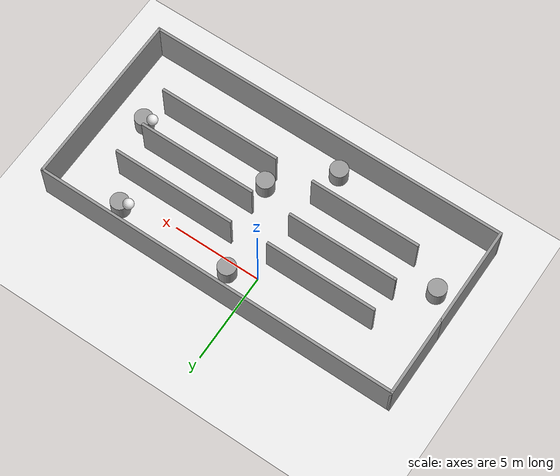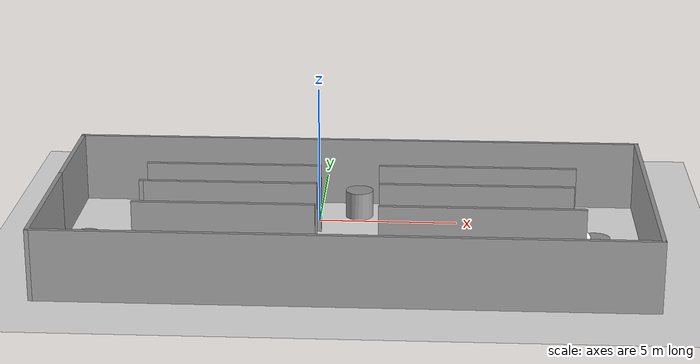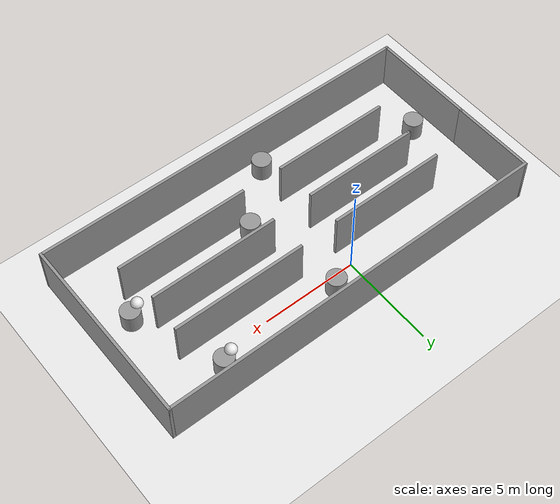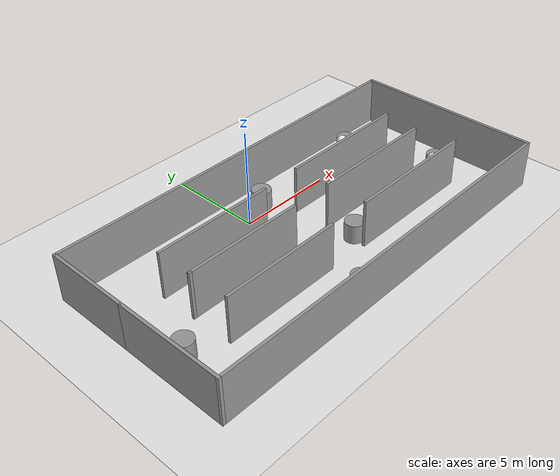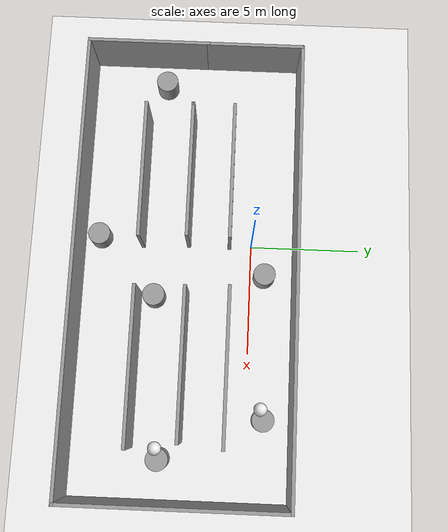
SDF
<sdf version="1.7">
 <world name="default">
  <light name="sun" type="directional">
   <pose>0 0 10 0 -0 0</pose>
   <diffuse>0.8 0.8 0.8 1</diffuse>
   <specular>0.2 0.2 0.2 1</specular>
   <attenuation>
    <range>1000</range>
    <constant>0.9</constant>
    <linear>0.01</linear>
    <quadratic>0.001</quadratic>
   </attenuation>
   <direction>-0.5 0.1 -0.9</direction>
   <spot><inner_angle>0</inner_angle><outer_angle>0</outer_angle><falloff>0</falloff></spot>
  </light>
  <model name="ground_plane">
   <static>1</static>
   <link name="link">
    <collision name="collision">
     <geometry><plane><normal>0 0 1</normal><size>100 100</size></plane></geometry>
     <surface>
      <contact><collide_bitmask>65535</collide_bitmask></contact>
      <friction><ode><mu>100</mu><mu2>50</mu2></ode></friction>
     </surface>
    </collision>
    <visual name="visual">
     <cast_shadows>0</cast_shadows>
     <geometry><plane><normal>0 0 1</normal><size>100 100</size></plane></geometry>
     <material>
      <script><uri>file://media/materials/scripts/gazebo.material</uri><name>Gazebo/White</name></script>
     </material>
    </visual>
   </link>
  </model>
  <gravity>0 0 -9.8</gravity>
  <magnetic_field>6e-06 2.3e-05 -4.2e-05</magnetic_field>
  <atmosphere type="adiabatic"/>
  <physics type="ode">
   <max_step_size>0.001</max_step_size>
   <real_time_factor>1</real_time_factor>
   <real_time_update_rate>1000</real_time_update_rate>
  </physics>
  <scene><ambient>0.4 0.4 0.4 1</ambient><background>0.7 0.7 0.7 1</background><shadows>1</shadows></scene>
  <spherical_coordinates>
   <surface_model>EARTH_WGS84</surface_model>
   <latitude_deg>0</latitude_deg>
   <longitude_deg>0</longitude_deg>
   <elevation>0</elevation>
   <heading_deg>0</heading_deg>
  </spherical_coordinates>
  <model name="walls">
   <pose>1.29401 -2.92418 0 0 -0 0</pose>
   <link name="Wall_0">
    <collision name="Wall_0_Collision">
     <geometry><box><size>6.25 0.15 2.5</size></box></geometry>
     <pose>0 0 1.25 0 -0 0</pose>
    </collision>
    <visual name="Wall_0_Visual">
     <pose>0 0 1.25 0 -0 0</pose>
     <geometry><box><size>6.25 0.15 2.5</size></box></geometry>
     <material>
      <script><uri>file://media/materials/scripts/gazebo.material</uri><name>Gazebo/Grey</name></script>
      <ambient>1 1 1 1</ambient>
     </material>
     <meta><layer>0</layer></meta>
    </visual>
    <pose>-4.28402 1.9064 0 0 -0 3.14159</pose>
   </link>
   <link name="Wall_10">
    <collision name="Wall_10_Collision">
     <geometry><box><size>7 0.15 2.5</size></box></geometry>
     <pose>0 0 1.25 0 -0 0</pose>
    </collision>
    <visual name="Wall_10_Visual">
     <pose>0 0 1.25 0 -0 0</pose>
     <geometry><box><size>7 0.15 2.5</size></box></geometry>
     <material>
      <script><uri>file://media/materials/scripts/gazebo.material</uri><name>Gazebo/Grey</name></script>
      <ambient>1 1 1 1</ambient>
     </material>
     <meta><layer>0</layer></meta>
    </visual>
    <pose>4.42245 1.99512 0 0 -0 3.14159</pose>
   </link>
   <link name="Wall_13">
    <collision name="Wall_13_Collision">
     <geometry><box><size>6.75 0.15 2.5</size></box></geometry>
     <pose>0 0 1.25 0 -0 0</pose>
    </collision>
    <visual name="Wall_13_Visual">
     <pose>0 0 1.25 0 -0 0</pose>
     <geometry><box><size>6.75 0.15 2.5</size></box></geometry>
     <material>
      <script><uri>file://media/materials/scripts/gazebo.material</uri><name>Gazebo/Grey</name></script>
      <ambient>1 1 1 1</ambient>
     </material>
     <meta><layer>0</layer></meta>
    </visual>
    <pose>4.36628 0.055057 0 0 -0 0</pose>
   </link>
   <link name="Wall_16">
    <collision name="Wall_16_Collision">
     <geometry><box><size>7 0.15 2.5</size></box></geometry>
     <pose>0 0 1.25 0 -0 0</pose>
    </collision>
    <visual name="Wall_16_Visual">
     <pose>0 0 1.25 0 -0 0</pose>
     <geometry><box><size>7 0.15 2.5</size></box></geometry>
     <material>
      <script><uri>file://media/materials/scripts/gazebo.material</uri><name>Gazebo/Grey</name></script>
      <ambient>1 1 1 1</ambient>
     </material>
     <meta><layer>0</layer></meta>
    </visual>
    <pose>4.54421 -2.14157 0 0 -0 3.14159</pose>
   </link>
   <link name="Wall_18">
    <collision name="Wall_18_Collision">
     <geometry><box><size>4.5 0.15 2.5</size></box></geometry>
     <pose>0 0 1.25 0 -0 0</pose>
    </collision>
    <visual name="Wall_18_Visual">
     <pose>0 0 1.25 0 -0 0</pose>
     <geometry><box><size>4.5 0.15 2.5</size></box></geometry>
     <material>
      <script><uri>file://media/materials/scripts/gazebo.material</uri><name>Gazebo/Grey</name></script>
      <ambient>1 1 1 1</ambient>
     </material>
     <meta><layer>0</layer></meta>
    </visual>
    <pose>-10.3 2.75 0 0 -0 1.5708</pose>
   </link>
   <link name="Wall_19">
    <collision name="Wall_19_Collision">
     <geometry><box><size>20.75 0.15 2.5</size></box></geometry>
     <pose>0 0 1.25 0 -0 0</pose>
    </collision>
    <visual name="Wall_19_Visual">
     <pose>0 0 1.25 0 -0 0</pose>
     <geometry><box><size>20.75 0.15 2.5</size></box></geometry>
     <material>
      <script><uri>file://media/materials/scripts/gazebo.material</uri><name>Gazebo/Grey</name></script>
      <ambient>1 1 1 1</ambient>
     </material>
     <meta><layer>0</layer></meta>
    </visual>
    <pose>0 4.925 0 0 -0 0</pose>
   </link>
   <link name="Wall_2">
    <collision name="Wall_2_Collision">
     <geometry><box><size>0.15 0.15 2.5</size></box></geometry>
     <pose>0 0 1.25 0 -0 0</pose>
    </collision>
    <visual name="Wall_2_Visual">
     <pose>0 0 1.25 0 -0 0</pose>
     <geometry><box><size>0.15 0.15 2.5</size></box></geometry>
     <material>
      <script><uri>file://media/materials/scripts/gazebo.material</uri><name>Gazebo/Grey</name></script>
      <ambient>1 1 1 1</ambient>
     </material>
     <meta><layer>0</layer></meta>
    </visual>
    <pose>-7.33401 0.01418 0 0 -0 0</pose>
   </link>
   <link name="Wall_20">
    <collision name="Wall_20_Collision">
     <geometry><box><size>10 0.15 2.5</size></box></geometry>
     <pose>0 0 1.25 0 -0 0</pose>
    </collision>
    <visual name="Wall_20_Visual">
     <pose>0 0 1.25 0 -0 0</pose>
     <geometry><box><size>10 0.15 2.5</size></box></geometry>
     <material>
      <script><uri>file://media/materials/scripts/gazebo.material</uri><name>Gazebo/Grey</name></script>
      <ambient>1 1 1 1</ambient>
     </material>
     <meta><layer>0</layer></meta>
    </visual>
    <pose>10.3 0 0 0 -0 -1.5708</pose>
   </link>
   <link name="Wall_21">
    <collision name="Wall_21_Collision">
     <geometry><box><size>20.75 0.15 2.5</size></box></geometry>
     <pose>0 0 1.25 0 -0 0</pose>
    </collision>
    <visual name="Wall_21_Visual">
     <pose>0 0 1.25 0 -0 0</pose>
     <geometry><box><size>20.75 0.15 2.5</size></box></geometry>
     <material>
      <script><uri>file://media/materials/scripts/gazebo.material</uri><name>Gazebo/Grey</name></script>
      <ambient>1 1 1 1</ambient>
     </material>
     <meta><layer>0</layer></meta>
    </visual>
    <pose>0 -4.925 0 0 -0 3.14159</pose>
   </link>
   <link name="Wall_22">
    <collision name="Wall_22_Collision">
     <geometry><box><size>5.65 0.15 2.5</size></box></geometry>
     <pose>0 0 1.25 0 -0 0</pose>
    </collision>
    <visual name="Wall_22_Visual">
     <pose>0 0 1.25 0 -0 0</pose>
     <geometry><box><size>5.65 0.15 2.5</size></box></geometry>
     <material>
      <script><uri>file://media/materials/scripts/gazebo.material</uri><name>Gazebo/Grey</name></script>
      <ambient>1 1 1 1</ambient>
     </material>
     <meta><layer>0</layer></meta>
    </visual>
    <pose>-10.3 -2.175 0 0 -0 1.5708</pose>
   </link>
   <link name="Wall_4">
    <collision name="Wall_4_Collision">
     <geometry><box><size>6.23 0.15 2.5</size></box></geometry>
     <pose>0 0 1.25 0 -0 0</pose>
    </collision>
    <visual name="Wall_4_Visual">
     <pose>0 0 1.25 0 -0 0</pose>
     <geometry><box><size>6.23 0.15 2.5</size></box></geometry>
     <material>
      <script><uri>file://media/materials/scripts/gazebo.material</uri><name>Gazebo/Grey</name></script>
      <ambient>1 1 1 1</ambient>
     </material>
     <meta><layer>0</layer></meta>
    </visual>
    <pose>-4.29401 0.01418 0 0 -0 3.14159</pose>
   </link>
   <link name="Wall_8">
    <collision name="Wall_8_Collision">
     <geometry><box><size>6.25 0.15 2.5</size></box></geometry>
     <pose>0 0 1.25 0 -0 0</pose>
    </collision>
    <visual name="Wall_8_Visual">
     <pose>0 0 1.25 0 -0 0</pose>
     <geometry><box><size>6.25 0.15 2.5</size></box></geometry>
     <material>
      <script><uri>file://media/materials/scripts/gazebo.material</uri><name>Gazebo/Grey</name></script>
      <ambient>1 1 1 1</ambient>
     </material>
     <meta><layer>0</layer></meta>
    </visual>
    <pose>-4.21966 -2.11322 0 0 -0 0</pose>
   </link>
   <static>1</static>
  </model>
  <model name="model2.6">
   <link name="link_6">
    <inertial>
     <mass>1</mass>
     <inertia><ixx>0.145833</ixx><ixy>0</ixy><ixz>0</ixz><iyy>0.145833</iyy><iyz>0</iyz><izz>0.125</izz></inertia>
    </inertial>
    <pose>-4e-06 4e-06 -0 0 -0 0</pose>
    <visual name="visual">
     <geometry><cylinder><radius>0.5</radius><length>1</length></cylinder></geometry>
     <material>
      <lighting>1</lighting>
      <script><uri>file://media/materials/scripts/gazebo.material</uri><name>Gazebo/Grey</name></script>
      <shader type="pixel"><normal_map>__default__</normal_map></shader>
      <ambient>0.3 0.3 0.3 1</ambient>
      <diffuse>0.7 0.7 0.7 1</diffuse>
      <specular>0.01 0.01 0.01 1</specular>
      <emissive>0 0 0 1</emissive>
     </material>
    </visual>
    <collision name="collision">
     <geometry><cylinder><radius>0.5</radius><length>1</length></cylinder></geometry>
     <surface>
      <friction>
       <ode><mu>1</mu><mu2>1</mu2><fdir1>0 0 0</fdir1><slip1>0</slip1><slip2>0</slip2></ode>
       <torsional>
        <coefficient>1</coefficient>
        <patch_radius>0</patch_radius>
        <surface_radius>0</surface_radius>
        <use_patch_radius>1</use_patch_radius>
        <ode><slip>0</slip></ode>
       </torsional>
      </friction>
      <bounce><restitution_coefficient>0</restitution_coefficient><threshold>1e+06</threshold></bounce>
      <contact>
       <collide_without_contact>0</collide_without_contact>
       <collide_without_contact_bitmask>1</collide_without_contact_bitmask>
       <collide_bitmask>1</collide_bitmask>
       <ode>
        <soft_cfm>0</soft_cfm>
        <soft_erp>0.2</soft_erp>
        <kp>1e+13</kp>
        <kd>1</kd>
        <max_vel>0</max_vel>
        <min_depth>0.001</min_depth>
       </ode>
       <bullet>
        <split_impulse>1</split_impulse>
        <split_impulse_penetration_threshold>-0.01</split_impulse_penetration_threshold>
        <soft_cfm>0</soft_cfm>
        <soft_erp>0.2</soft_erp>
        <kp>1e+13</kp>
        <kd>1</kd>
       </bullet>
      </contact>
     </surface>
    </collision>
   </link>
   <static>0</static>
   <pose>1.43174 0.620481 0.499 0 -0 0</pose>
  </model>
  <model name="model2.7">
   <link name="link_7">
    <inertial>
     <mass>1</mass>
     <inertia><ixx>0.145833</ixx><ixy>0</ixy><ixz>0</ixz><iyy>0.145833</iyy><iyz>0</iyz><izz>0.125</izz></inertia>
    </inertial>
    <pose>4.2e-05 4e-06 0.5 0 -0 0</pose>
    <visual name="visual">
     <geometry><cylinder><radius>0.5</radius><length>1</length></cylinder></geometry>
     <material>
      <lighting>1</lighting>
      <script><uri>file://media/materials/scripts/gazebo.material</uri><name>Gazebo/Grey</name></script>
      <shader type="pixel"><normal_map>__default__</normal_map></shader>
      <ambient>0.3 0.3 0.3 1</ambient>
      <diffuse>0.7 0.7 0.7 1</diffuse>
      <specular>0.01 0.01 0.01 1</specular>
      <emissive>0 0 0 1</emissive>
     </material>
    </visual>
    <collision name="collision">
     <geometry><cylinder><radius>0.5</radius><length>1</length></cylinder></geometry>
     <surface>
      <friction>
       <ode><mu>1</mu><mu2>1</mu2><fdir1>0 0 0</fdir1><slip1>0</slip1><slip2>0</slip2></ode>
       <torsional>
        <coefficient>1</coefficient>
        <patch_radius>0</patch_radius>
        <surface_radius>0</surface_radius>
        <use_patch_radius>1</use_patch_radius>
        <ode><slip>0</slip></ode>
       </torsional>
      </friction>
      <bounce><restitution_coefficient>0</restitution_coefficient><threshold>1e+06</threshold></bounce>
      <contact>
       <collide_without_contact>0</collide_without_contact>
       <collide_without_contact_bitmask>1</collide_without_contact_bitmask>
       <collide_bitmask>1</collide_bitmask>
       <ode>
        <soft_cfm>0</soft_cfm>
        <soft_erp>0.2</soft_erp>
        <kp>1e+13</kp>
        <kd>1</kd>
        <max_vel>0</max_vel>
        <min_depth>0.001</min_depth>
       </ode>
       <bullet>
        <split_impulse>1</split_impulse>
        <split_impulse_penetration_threshold>-0.01</split_impulse_penetration_threshold>
        <soft_cfm>0</soft_cfm>
        <soft_erp>0.2</soft_erp>
        <kp>1e+13</kp>
        <kd>1</kd>
       </bullet>
      </contact>
     </surface>
    </collision>
   </link>
   <static>0</static>
   <pose>2.54425 -4.35975 -1e-05 0 -0 0</pose>
  </model>
  <model name="model2.7_0">
   <link name="link_7">
    <inertial>
     <mass>1</mass>
     <inertia><ixx>0.145833</ixx><ixy>0</ixy><ixz>0</ixz><iyy>0.145833</iyy><iyz>0</iyz><izz>0.125</izz></inertia>
    </inertial>
    <pose>4.2e-05 4e-06 0.5 0 -0 0</pose>
    <visual name="visual">
     <geometry><cylinder><radius>0.5</radius><length>1</length></cylinder></geometry>
     <material>
      <lighting>1</lighting>
      <script><uri>file://media/materials/scripts/gazebo.material</uri><name>Gazebo/Grey</name></script>
      <shader type="pixel"><normal_map>__default__</normal_map></shader>
      <ambient>0.3 0.3 0.3 1</ambient>
      <diffuse>0.7 0.7 0.7 1</diffuse>
      <specular>0.01 0.01 0.01 1</specular>
      <emissive>0 0 0 1</emissive>
     </material>
    </visual>
    <collision name="collision">
     <geometry><cylinder><radius>0.5</radius><length>1</length></cylinder></geometry>
     <surface>
      <friction>
       <ode><mu>1</mu><mu2>1</mu2><fdir1>0 0 0</fdir1><slip1>0</slip1><slip2>0</slip2></ode>
       <torsional>
        <coefficient>1</coefficient>
        <patch_radius>0</patch_radius>
        <surface_radius>0</surface_radius>
        <use_patch_radius>1</use_patch_radius>
        <ode><slip>0</slip></ode>
       </torsional>
      </friction>
      <bounce><restitution_coefficient>0</restitution_coefficient><threshold>1e+06</threshold></bounce>
      <contact>
       <collide_without_contact>0</collide_without_contact>
       <collide_without_contact_bitmask>1</collide_without_contact_bitmask>
       <collide_bitmask>1</collide_bitmask>
       <ode>
        <soft_cfm>0</soft_cfm>
        <soft_erp>0.2</soft_erp>
        <kp>1e+13</kp>
        <kd>1</kd>
        <max_vel>0</max_vel>
        <min_depth>0.001</min_depth>
       </ode>
       <bullet>
        <split_impulse>1</split_impulse>
        <split_impulse_penetration_threshold>-0.01</split_impulse_penetration_threshold>
        <soft_cfm>0</soft_cfm>
        <soft_erp>0.2</soft_erp>
        <kp>1e+13</kp>
        <kd>1</kd>
       </bullet>
      </contact>
     </surface>
    </collision>
   </link>
   <static>0</static>
   <pose>-7.75424 -4.29 -1e-05 0 -0 0</pose>
  </model>
  <model name="model2.6_0">
   <link name="link_6">
    <inertial>
     <mass>1</mass>
     <inertia><ixx>0.145833</ixx><ixy>0</ixy><ixz>0</ixz><iyy>0.145833</iyy><iyz>0</iyz><izz>0.125</izz></inertia>
    </inertial>
    <pose>-4e-06 4e-06 -0 0 -0 0</pose>
    <visual name="visual">
     <geometry><cylinder><radius>0.5</radius><length>1</length></cylinder></geometry>
     <material>
      <lighting>1</lighting>
      <script><uri>file://media/materials/scripts/gazebo.material</uri><name>Gazebo/Grey</name></script>
      <shader type="pixel"><normal_map>__default__</normal_map></shader>
      <ambient>0.3 0.3 0.3 1</ambient>
      <diffuse>0.7 0.7 0.7 1</diffuse>
      <specular>0.01 0.01 0.01 1</specular>
      <emissive>0 0 0 1</emissive>
     </material>
    </visual>
    <collision name="collision">
     <geometry><cylinder><radius>0.5</radius><length>1</length></cylinder></geometry>
     <surface>
      <friction>
       <ode><mu>1</mu><mu2>1</mu2><fdir1>0 0 0</fdir1><slip1>0</slip1><slip2>0</slip2></ode>
       <torsional>
        <coefficient>1</coefficient>
        <patch_radius>0</patch_radius>
        <surface_radius>0</surface_radius>
        <use_patch_radius>1</use_patch_radius>
        <ode><slip>0</slip></ode>
       </torsional>
      </friction>
      <bounce><restitution_coefficient>0</restitution_coefficient><threshold>1e+06</threshold></bounce>
      <contact>
       <collide_without_contact>0</collide_without_contact>
       <collide_without_contact_bitmask>1</collide_without_contact_bitmask>
       <collide_bitmask>1</collide_bitmask>
       <ode>
        <soft_cfm>0</soft_cfm>
        <soft_erp>0.2</soft_erp>
        <kp>1e+13</kp>
        <kd>1</kd>
        <max_vel>0</max_vel>
        <min_depth>0.001</min_depth>
       </ode>
       <bullet>
        <split_impulse>1</split_impulse>
        <split_impulse_penetration_threshold>-0.01</split_impulse_penetration_threshold>
        <soft_cfm>0</soft_cfm>
        <soft_erp>0.2</soft_erp>
        <kp>1e+13</kp>
        <kd>1</kd>
       </bullet>
      </contact>
     </surface>
    </collision>
   </link>
   <static>0</static>
   <pose>-0.190416 -7.00896 0.499 0 -0 0</pose>
  </model>
  <model name="model6.1">
   <link name="link_0">
    <inertial>
     <mass>1</mass>
     <inertia><ixx>0.145833</ixx><ixy>0</ixy><ixz>0</ixz><iyy>0.145833</iyy><iyz>0</iyz><izz>0.125</izz></inertia>
    </inertial>
    <pose>0.23341 0.06182 -0.25 0 -0 0</pose>
    <visual name="visual">
     <geometry><cylinder><radius>0.5</radius><length>1</length></cylinder></geometry>
     <material>
      <lighting>1</lighting>
      <script><uri>file://media/materials/scripts/gazebo.material</uri><name>Gazebo/Grey</name></script>
      <shader type="pixel"><normal_map>__default__</normal_map></shader>
      <emissive>0 0 0 1</emissive>
      <ambient>0.3 0.3 0.3 1</ambient>
      <diffuse>0.7 0.7 0.7 1</diffuse>
      <specular>0.01 0.01 0.01 1</specular>
     </material>
    </visual>
    <collision name="collision">
     <geometry><cylinder><radius>0.5</radius><length>1</length></cylinder></geometry>
     <surface>
      <friction>
       <ode><mu>1</mu><mu2>1</mu2><fdir1>0 0 0</fdir1><slip1>0</slip1><slip2>0</slip2></ode>
       <torsional>
        <coefficient>1</coefficient>
        <patch_radius>0</patch_radius>
        <surface_radius>0</surface_radius>
        <use_patch_radius>1</use_patch_radius>
        <ode><slip>0</slip></ode>
       </torsional>
      </friction>
      <bounce><restitution_coefficient>0</restitution_coefficient><threshold>1e+06</threshold></bounce>
      <contact>
       <collide_without_contact>0</collide_without_contact>
       <collide_without_contact_bitmask>1</collide_without_contact_bitmask>
       <collide_bitmask>1</collide_bitmask>
       <ode>
        <soft_cfm>0</soft_cfm>
        <soft_erp>0.2</soft_erp>
        <kp>1e+13</kp>
        <kd>1</kd>
        <max_vel>0.01</max_vel>
        <min_depth>0</min_depth>
       </ode>
       <bullet>
        <split_impulse>1</split_impulse>
        <split_impulse_penetration_threshold>-0.01</split_impulse_penetration_threshold>
        <soft_cfm>0</soft_cfm>
        <soft_erp>0.2</soft_erp>
        <kp>1e+13</kp>
        <kd>1</kd>
       </bullet>
      </contact>
     </surface>
    </collision>
   </link>
   <link name="link_1">
    <inertial>
     <mass>1</mass>
     <inertia><ixx>0.1</ixx><ixy>0</ixy><ixz>0</ixz><iyy>0.1</iyy><iyz>0</iyz><izz>0.1</izz></inertia>
    </inertial>
    <pose>-0.23341 -0.06182 0.25 0 -0 0</pose>
    <visual name="visual">
     <geometry><sphere><radius>0.3</radius></sphere></geometry>
     <material>
      <lighting>1</lighting>
      <script><uri>file://media/materials/scripts/gazebo.material</uri><name>Gazebo/White</name></script>
      <shader type="pixel"><normal_map>__default__</normal_map></shader>
      <ambient>0.3 0.3 0.3 1</ambient>
      <diffuse>0.7 0.7 0.7 1</diffuse>
      <specular>0.01 0.01 0.01 1</specular>
      <emissive>0 0 0 1</emissive>
     </material>
    </visual>
    <collision name="collision">
     <geometry><sphere><radius>0.3</radius></sphere></geometry>
     <surface>
      <friction>
       <ode><mu>1</mu><mu2>1</mu2><fdir1>0 0 0</fdir1><slip1>0</slip1><slip2>0</slip2></ode>
       <torsional>
        <coefficient>1</coefficient>
        <patch_radius>0</patch_radius>
        <surface_radius>0</surface_radius>
        <use_patch_radius>1</use_patch_radius>
        <ode><slip>0</slip></ode>
       </torsional>
      </friction>
      <bounce><restitution_coefficient>0</restitution_coefficient><threshold>1e+06</threshold></bounce>
      <contact>
       <collide_without_contact>0</collide_without_contact>
       <collide_without_contact_bitmask>1</collide_without_contact_bitmask>
       <collide_bitmask>1</collide_bitmask>
       <ode>
        <soft_cfm>0</soft_cfm>
        <soft_erp>0.2</soft_erp>
        <kp>1e+13</kp>
        <kd>1</kd>
        <max_vel>0.01</max_vel>
        <min_depth>0</min_depth>
       </ode>
       <bullet>
        <split_impulse>1</split_impulse>
        <split_impulse_penetration_threshold>-0.01</split_impulse_penetration_threshold>
        <soft_cfm>0</soft_cfm>
        <soft_erp>0.2</soft_erp>
        <kp>1e+13</kp>
        <kd>1</kd>
       </bullet>
      </contact>
     </surface>
    </collision>
   </link>
   <joint name="link_0_JOINT_0" type="revolute">
    <parent>link_0</parent>
    <child>link_1</child>
    <axis>
     <xyz>0 0 2</xyz>
     <limit>
      <lower>-1.79769e+308</lower>
      <upper>1.79769e+308</upper>
      <effort>-1</effort>
      <velocity>-1</velocity>
     </limit>
     <dynamics>
      <spring_reference>0</spring_reference>
      <spring_stiffness>0</spring_stiffness>
      <damping>0</damping>
     </dynamics>
    </axis>
    <physics>
     <ode><limit><cfm>0</cfm><erp>0.2</erp></limit><suspension><cfm>0</cfm><erp>0.2</erp></suspension></ode>
    </physics>
   </joint>
   <static>0</static>
   <pose>9.52389 -3.86269 0.749998 0 -0 0.00102</pose>
  </model>
  <model name="model6.1_0">
   <link name="link_0">
    <inertial>
     <mass>1</mass>
     <inertia><ixx>0.145833</ixx><ixy>0</ixy><ixz>0</ixz><iyy>0.145833</iyy><iyz>0</iyz><izz>0.125</izz></inertia>
    </inertial>
    <pose>0.23341 0.06182 -0.25 0 -0 0</pose>
    <visual name="visual">
     <geometry><cylinder><radius>0.5</radius><length>1</length></cylinder></geometry>
     <material>
      <lighting>1</lighting>
      <script><uri>file://media/materials/scripts/gazebo.material</uri><name>Gazebo/Grey</name></script>
      <shader type="pixel"><normal_map>__default__</normal_map></shader>
      <emissive>0 0 0 1</emissive>
      <ambient>0.3 0.3 0.3 1</ambient>
      <diffuse>0.7 0.7 0.7 1</diffuse>
      <specular>0.01 0.01 0.01 1</specular>
     </material>
    </visual>
    <collision name="collision">
     <geometry><cylinder><radius>0.5</radius><length>1</length></cylinder></geometry>
     <surface>
      <friction>
       <ode><mu>1</mu><mu2>1</mu2><fdir1>0 0 0</fdir1><slip1>0</slip1><slip2>0</slip2></ode>
       <torsional>
        <coefficient>1</coefficient>
        <patch_radius>0</patch_radius>
        <surface_radius>0</surface_radius>
        <use_patch_radius>1</use_patch_radius>
        <ode><slip>0</slip></ode>
       </torsional>
      </friction>
      <bounce><restitution_coefficient>0</restitution_coefficient><threshold>1e+06</threshold></bounce>
      <contact>
       <collide_without_contact>0</collide_without_contact>
       <collide_without_contact_bitmask>1</collide_without_contact_bitmask>
       <collide_bitmask>1</collide_bitmask>
       <ode>
        <soft_cfm>0</soft_cfm>
        <soft_erp>0.2</soft_erp>
        <kp>1e+13</kp>
        <kd>1</kd>
        <max_vel>0.01</max_vel>
        <min_depth>0</min_depth>
       </ode>
       <bullet>
        <split_impulse>1</split_impulse>
        <split_impulse_penetration_threshold>-0.01</split_impulse_penetration_threshold>
        <soft_cfm>0</soft_cfm>
        <soft_erp>0.2</soft_erp>
        <kp>1e+13</kp>
        <kd>1</kd>
       </bullet>
      </contact>
     </surface>
    </collision>
   </link>
   <link name="link_1">
    <inertial>
     <mass>1</mass>
     <inertia><ixx>0.1</ixx><ixy>0</ixy><ixz>0</ixz><iyy>0.1</iyy><iyz>0</iyz><izz>0.1</izz></inertia>
    </inertial>
    <pose>-0.23341 -0.06182 0.25 0 -0 0</pose>
    <visual name="visual">
     <geometry><sphere><radius>0.3</radius></sphere></geometry>
     <material>
      <lighting>1</lighting>
      <script><uri>file://media/materials/scripts/gazebo.material</uri><name>Gazebo/White</name></script>
      <shader type="pixel"><normal_map>__default__</normal_map></shader>
      <ambient>0.3 0.3 0.3 1</ambient>
      <diffuse>0.7 0.7 0.7 1</diffuse>
      <specular>0.01 0.01 0.01 1</specular>
      <emissive>0 0 0 1</emissive>
     </material>
    </visual>
    <collision name="collision">
     <geometry><sphere><radius>0.3</radius></sphere></geometry>
     <surface>
      <friction>
       <ode><mu>1</mu><mu2>1</mu2><fdir1>0 0 0</fdir1><slip1>0</slip1><slip2>0</slip2></ode>
       <torsional>
        <coefficient>1</coefficient>
        <patch_radius>0</patch_radius>
        <surface_radius>0</surface_radius>
        <use_patch_radius>1</use_patch_radius>
        <ode><slip>0</slip></ode>
       </torsional>
      </friction>
      <bounce><restitution_coefficient>0</restitution_coefficient><threshold>1e+06</threshold></bounce>
      <contact>
       <collide_without_contact>0</collide_without_contact>
       <collide_without_contact_bitmask>1</collide_without_contact_bitmask>
       <collide_bitmask>1</collide_bitmask>
       <ode>
        <soft_cfm>0</soft_cfm>
        <soft_erp>0.2</soft_erp>
        <kp>1e+13</kp>
        <kd>1</kd>
        <max_vel>0.01</max_vel>
        <min_depth>0</min_depth>
       </ode>
       <bullet>
        <split_impulse>1</split_impulse>
        <split_impulse_penetration_threshold>-0.01</split_impulse_penetration_threshold>
        <soft_cfm>0</soft_cfm>
        <soft_erp>0.2</soft_erp>
        <kp>1e+13</kp>
        <kd>1</kd>
       </bullet>
      </contact>
     </surface>
    </collision>
   </link>
   <joint name="link_0_JOINT_0" type="revolute">
    <parent>link_0</parent>
    <child>link_1</child>
    <axis>
     <xyz>0 0 2</xyz>
     <limit>
      <lower>-1.79769e+308</lower>
      <upper>1.79769e+308</upper>
      <effort>-1</effort>
      <velocity>-1</velocity>
     </limit>
     <dynamics>
      <spring_reference>0</spring_reference>
      <spring_stiffness>0</spring_stiffness>
      <damping>0</damping>
     </dynamics>
    </axis>
    <physics>
     <ode><limit><cfm>0</cfm><erp>0.2</erp></limit><suspension><cfm>0</cfm><erp>0.2</erp></suspension></ode>
    </physics>
   </joint>
   <static>0</static>
   <pose>7.68887 0.683907 0.749997 0 -0 0.000993</pose>
  </model>
 </world>
</sdf>
